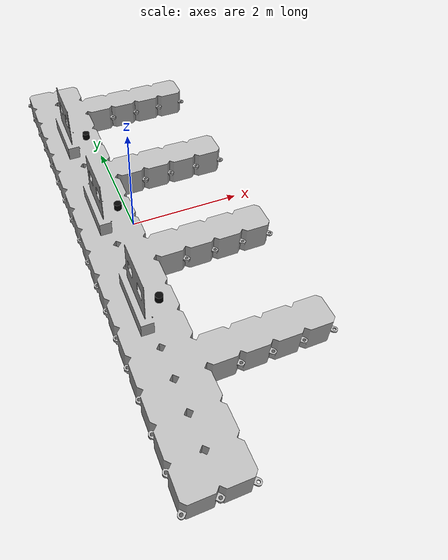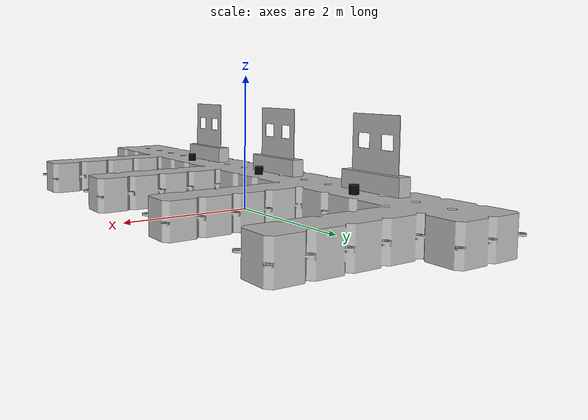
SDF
<?xml version="1.0" encoding="UTF-8"?>
<sdf version='1.9'>
  <model name='bounded_dock'>
    <static>true</static>
    <pose>0 0 0 0 0 0</pose>

    <link name='docking_link'>
      <inertial>
        <pose>-3.3493202366961417e-05 0 6.6986404733922848e-05 1.5700000000000001 0 0</pose>
        <mass>5500.7075582190346</mass>
        <inertia>
          <ixx>240.61530446574389</ixx>
          <ixy>0.093579675196458503</ixy>
          <ixz>7.4520018571842047e-05</ixz>
          <iyy>227.7390639361879</iyy>
          <iyz>0.00144094006270884</iyz>
          <izz>232.86831224580979</izz>
        </inertia>
      </inertial>

      <collision name='docking_link_collision'>
        <pose>0 0 0 1.5700000000000001 0 0</pose>
        <geometry>
          <mesh>
            <scale>1 1 1</scale>
            <uri>model://robotx26/docking_task/dock/docking_link_no_boundary_s.obj</uri>
          </mesh>
        </geometry>
      </collision>

      <visual name='docking_link_visual'>
        <pose>0 0 0 1.5700000000000001 0 0</pose>
        <geometry>
          <mesh>
            <scale>1 1 1</scale>
            <uri>model://robotx26/docking_task/dock/docking_link_no_boundary_s.obj</uri>
          </mesh>
        </geometry>
      </visual>
    </link>

    <include>
      <name>docking_led_left</name>
      <uri>model://robotx26/docking_led</uri>
      <pose>-0.254 -2.032 0.568 0 0 0</pose>
    </include>

    <include>
      <name>docking_led_middle</name>
      <uri>model://robotx26/docking_led</uri>
      <pose>-0.254 0 0.568 0 0 0</pose>
    </include>

    <include>
      <name>docking_led_right</name>
      <uri>model://robotx26/docking_led</uri>
      <pose>-0.254 2.032 0.568 0 0 0</pose>
    </include>

  </model>
</sdf>

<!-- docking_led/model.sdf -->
<sdf version='1.9'>
  <model name='docking_led'>
    <static>true</static>
    <link name='dock_led'>
      <pose>0 0 0 0 0 0</pose>
      <collision name='dock_led_collision'>
        <geometry>
          <cylinder>
            <radius>0.064</radius>
            <length>0.12906</length>
          </cylinder>
        </geometry>
      </collision>

      <visual name='dock_led_visual'>
        <geometry>
          <cylinder>
            <radius>0.064</radius>
            <length>0.12906</length>
          </cylinder>
        </geometry>
        <material>
          <ambient>0.02 0.02 0.02 1</ambient>
          <diffuse>0.02 0.02 0.02 1</diffuse>
          <specular>0 0 0 1</specular>
          <emissive>0 0 0 1</emissive>
        </material>
      </visual>
    </link>

    <plugin filename="libgz_led_plugin.so" name="gz::sim::systems::LedPlugin">
      <startup_mode>off</startup_mode>

      <led name="led">
        <visual_name>dock_led::dock_led_visual</visual_name>
        <default_state>
          <color>0 0 0 1</color>
          <intensity>0.0</intensity>
        </default_state>
      </led>

      <mode name='off'>
        <step always_on='true'><color>0 0 0 1</color></step>
      </mode>

      <mode name='steady_red'>
        <step always_on='true'><color>1 0 0 1</color></step>
      </mode>

      <mode name='steady_green'>
        <step always_on='true'><color>0 1 0 1</color></step>
      </mode>
    </plugin>
  </model>
</sdf>
